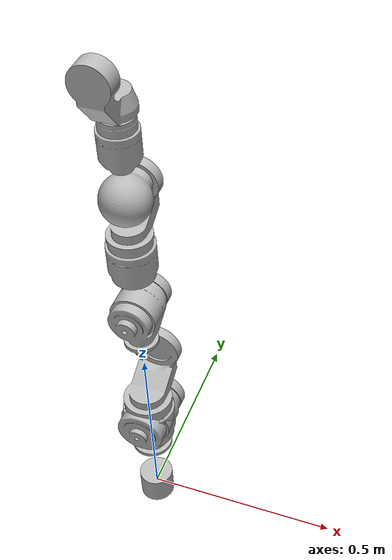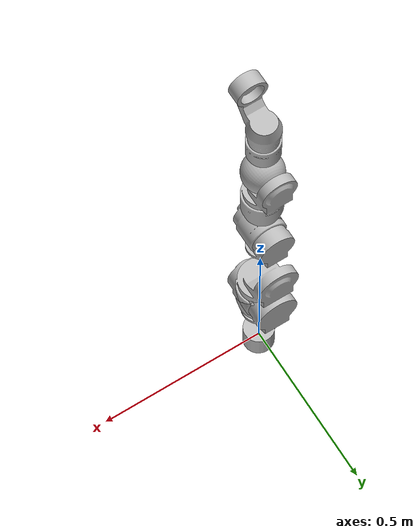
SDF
<sdf version='1.4'>
  <model name='lwa4d'>
    <link name='arm_base_link'>
      <pose>0 0 0 0 -0 0</pose>
      <inertial>
        <pose>0 0 0.09 0 -0 0</pose>
        <mass>3.6</mass>
        <inertia>
          <ixx>0.0105408</ixx>
          <ixy>0</ixy>
          <ixz>0</ixz>
          <iyy>0.0105408</iyy>
          <iyz>0</iyz>
          <izz>0.00648</izz>
        </inertia>
      </inertial>
      <collision name='arm_base_link_collision'>
        <pose>0 0 0.005 0 -0 0</pose>
        <geometry>
          <box>
            <size>0.01 0.01 0.01</size>
          </box>
        </geometry>
      </collision>
      <visual name='arm_base_link_visual'>
        <pose>0 0 0.004 0 -0 0</pose>
        <geometry>
          <cylinder>
            <length>0.08</length>
            <radius>0.045</radius>
          </cylinder>
        </geometry>
      </visual>
      <velocity_decay>
        <linear>0</linear>
        <angular>0</angular>
      </velocity_decay>
    </link>
    <joint name='arm_base_joint' type='revolute'>
      <child>arm_base_link</child>
      <parent>world</parent>
      <axis>
        <limit>
          <lower>0</lower>
          <upper>0</upper>
        </limit>
        <dynamics>
          <damping>0</damping>
        </dynamics>
        <xyz>0 0 1</xyz>
      </axis>
    </joint>
    <link name='arm_1_link'>
      <pose>0 0 0.15 -3.14159 2.06823e-13 -3.14159</pose>
      <inertial>
        <pose>0 0.02 -0.15 0 -0 0</pose>
        <mass>3.6</mass>
        <inertia>
          <ixx>0.0105408</ixx>
          <ixy>0</ixy>
          <ixz>0</ixz>
          <iyy>0.0105408</iyy>
          <iyz>0</iyz>
          <izz>0.00648</izz>
        </inertia>
      </inertial>
      <collision name='arm_1_link_collision'>
        <pose>0 0 -0.15 0 -0 -3.14159</pose>
        <geometry>
          <mesh>
            <scale>1 1 1</scale>
            <uri>model://schunk_description/meshes/lwa4d/arm_1_link.stl</uri>
          </mesh>
        </geometry>
      </collision>
      <visual name='arm_1_link_visual'>
        <pose>0 0 -0.15 0 -0 -3.14159</pose>
        <geometry>
          <mesh>
            <scale>1 1 1</scale>
            <uri>model://schunk_description/meshes/lwa4d/arm_1_link.stl</uri>
          </mesh>
        </geometry>
      </visual>
      <velocity_decay>
        <linear>0</linear>
        <angular>0</angular>
      </velocity_decay>
    </link>
    <joint name='arm_1_joint' type='revolute'>
      <child>arm_1_link</child>
      <parent>arm_base_link</parent>
      <axis>
        <xyz>2.06823e-13 0 -1</xyz>
        <limit>
          <lower>-3.14159</lower>
          <upper>3.14159</upper>
          <effort>216</effort>
          <velocity>0.43633</velocity>
        </limit>
        <dynamics/>
      </axis>
    </joint>
    <link name='arm_2_link'>
      <pose>-3.10235e-14 0 0.3 1.5708 2.06823e-13 -3.14159</pose>
      <inertial>
        <pose>0 0.15 0 0 -0 0</pose>
        <mass>2</mass>
        <inertia>
          <ixx>0.00456066</ixx>
          <ixy>0</ixy>
          <ixz>0</ixz>
          <iyy>0.00456066</iyy>
          <iyz>0</iyz>
          <izz>0.003136</izz>
        </inertia>
      </inertial>
      <collision name='arm_2_link_collision'>
        <pose>0 0 0 0 -0 -3.14159</pose>
        <geometry>
          <mesh>
            <scale>1 1 1</scale>
            <uri>model://schunk_description/meshes/lwa4d/arm_2_link.stl</uri>
          </mesh>
        </geometry>
      </collision>
      <visual name='arm_2_link_visual'>
        <pose>0 0 0 0 -0 -3.14159</pose>
        <geometry>
          <mesh>
            <scale>1 1 1</scale>
            <uri>model://schunk_description/meshes/lwa4d/arm_2_link.stl</uri>
          </mesh>
        </geometry>
      </visual>
      <velocity_decay>
        <linear>0</linear>
        <angular>0</angular>
      </velocity_decay>
    </link>
    <joint name='arm_2_joint' type='revolute'>
      <child>arm_2_link</child>
      <parent>arm_1_link</parent>
      <axis>
        <xyz>1.01273e-24 1 -4.89658e-12</xyz>
        <limit>
          <lower>-3.14159</lower>
          <upper>3.14159</upper>
          <effort>216</effort>
          <velocity>0.43633</velocity>
        </limit>
        <dynamics/>
      </axis>
    </joint>
    <link name='arm_3_link'>
      <pose>-3.10235e-14 0 0.3 -3.14159 2.06823e-13 -3.14159</pose>
      <inertial>
        <pose>0 0.03 -0.39 0 -0 0</pose>
        <mass>2</mass>
        <inertia>
          <ixx>0.00456066</ixx>
          <ixy>0</ixy>
          <ixz>0</ixz>
          <iyy>0.00456066</iyy>
          <iyz>0</iyz>
          <izz>0.003136</izz>
        </inertia>
      </inertial>
      <collision name='arm_3_link_collision'>
        <pose>0 0 -0.39 0 -0 -3.14159</pose>
        <geometry>
          <mesh>
            <scale>1 1 1</scale>
            <uri>model://schunk_description/meshes/lwa4d/arm_3_link.stl</uri>
          </mesh>
        </geometry>
      </collision>
      <visual name='arm_3_link_visual'>
        <pose>0 0 -0.39 0 -0 -3.14159</pose>
        <geometry>
          <mesh>
            <scale>1 1 1</scale>
            <uri>model://schunk_description/meshes/lwa4d/arm_3_link.stl</uri>
          </mesh>
        </geometry>
      </visual>
      <velocity_decay>
        <linear>0</linear>
        <angular>0</angular>
      </velocity_decay>
    </link>
    <joint name='arm_3_joint' type='revolute'>
      <child>arm_3_link</child>
      <parent>arm_2_link</parent>
      <axis>
        <xyz>2.06823e-13 1.30524e-42 -1</xyz>
        <limit>
          <lower>-3.14159</lower>
          <upper>3.14159</upper>
          <effort>81.5</effort>
          <velocity>0.4189</velocity>
        </limit>
        <dynamics/>
      </axis>
    </joint>
    <link name='arm_4_link'>
      <pose>-1.11684e-13 -5.09043e-43 0.69 1.5708 2.06823e-13 3.14159</pose>
      <inertial>
        <pose>0 0.15 0 0 -0 0</pose>
        <mass>1.2</mass>
        <inertia>
          <ixx>0.0018597</ixx>
          <ixy>0</ixy>
          <ixz>0</ixz>
          <iyy>0.0018597</iyy>
          <iyz>0</iyz>
          <izz>0.00118815</izz>
        </inertia>
      </inertial>
      <collision name='arm_4_link_collision'>
        <pose>0 0 0 0 -0 -3.14159</pose>
        <geometry>
          <mesh>
            <scale>1 1 1</scale>
            <uri>model://schunk_description/meshes/lwa4d/arm_4_link.stl</uri>
          </mesh>
        </geometry>
      </collision>
      <visual name='arm_4_link_visual'>
        <pose>0 0 0 0 -0 -3.14159</pose>
        <geometry>
          <mesh>
            <scale>1 1 1</scale>
            <uri>model://schunk_description/meshes/lwa4d/arm_4_link.stl</uri>
          </mesh>
        </geometry>
      </visual>
      <velocity_decay>
        <linear>0</linear>
        <angular>0</angular>
      </velocity_decay>
    </link>
    <joint name='arm_4_joint' type='revolute'>
      <child>arm_4_link</child>
      <parent>arm_3_link</parent>
      <axis>
        <xyz>1.01276e-24 1 -4.89658e-12</xyz>
        <limit>
          <lower>-3.14159</lower>
          <upper>3.14159</upper>
          <effort>81.5</effort>
          <velocity>0.4189</velocity>
        </limit>
        <dynamics/>
      </axis>
    </joint>
    <link name='arm_5_link'>
      <pose>-1.11684e-13 -5.09043e-43 0.69 3.14159 2.06823e-13 3.14159</pose>
      <inertial>
        <pose>0 0.05 -0.24 0 -0 0</pose>
        <mass>0.2</mass>
        <inertia>
          <ixx>0.000116079</ixx>
          <ixy>0</ixy>
          <ixz>0</ixz>
          <iyy>0.000116079</iyy>
          <iyz>0</iyz>
          <izz>0.000198025</izz>
        </inertia>
      </inertial>
      <collision name='arm_5_link_collision'>
        <pose>0 0 -0.323 0 -0 -3.14159</pose>
        <geometry>
          <mesh>
            <scale>1 1 1</scale>
            <uri>model://schunk_description/meshes/lwa4d/arm_5_link.stl</uri>
          </mesh>
        </geometry>
      </collision>
      <visual name='arm_5_link_visual'>
        <pose>0 0 -0.323 0 -0 -3.14159</pose>
        <geometry>
          <mesh>
            <scale>1 1 1</scale>
            <uri>model://schunk_description/meshes/lwa4d/arm_5_link.stl</uri>
          </mesh>
        </geometry>
      </visual>
      <velocity_decay>
        <linear>0</linear>
        <angular>0</angular>
      </velocity_decay>
    </link>
    <joint name='arm_5_joint' type='revolute'>
      <child>arm_5_link</child>
      <parent>arm_4_link</parent>
      <axis>
        <xyz>2.06823e-13 -1.30524e-42 -1</xyz>
        <limit>
          <lower>-3.14159</lower>
          <upper>3.14159</upper>
          <effort>20.7</effort>
          <velocity>0.43633</velocity>
        </limit>
        <dynamics/>
      </axis>
    </joint>
    <link name='arm_6_link'>
      <pose>-1.78488e-13 -8.74509e-44 1.013 1.5708 2.06823e-13 3.14159</pose>
      <inertial>
        <pose>0 0.012 0.017 0 -0 0</pose>
        <mass>1.9</mass>
        <inertia>
          <ixx>0.00275</ixx>
          <ixy>0</ixy>
          <ixz>0</ixz>
          <iyy>0.004002</iyy>
          <iyz>0</iyz>
          <izz>0.00283</izz>
        </inertia>
      </inertial>
      <collision name='arm_6_link_collision'>
        <pose>0 0 0 3.14159 -2.06823e-13 3.14159</pose>
        <geometry>
          <mesh>
            <scale>1 1 1</scale>
            <uri>model://schunk_description/meshes/lwa4d/arm_6_link.stl</uri>
          </mesh>
        </geometry>
      </collision>
      <visual name='arm_6_link_visual'>
        <pose>0 0 0 3.14159 -2.06823e-13 3.14159</pose>
        <geometry>
          <mesh>
            <scale>1 1 1</scale>
            <uri>model://schunk_description/meshes/lwa4d/arm_6_link.stl</uri>
          </mesh>
        </geometry>
      </visual>
      <velocity_decay>
        <linear>0</linear>
        <angular>0</angular>
      </velocity_decay>
    </link>
    <joint name='arm_6_joint' type='revolute'>
      <child>arm_6_link</child>
      <parent>arm_5_link</parent>
      <axis>
        <xyz>1.01276e-24 1 -4.89658e-12</xyz>
        <limit>
          <lower>-2.0944</lower>
          <upper>2.0944</upper>
          <effort>15</effort>
          <velocity>1.2566</velocity>
        </limit>
        <dynamics/>
      </axis>
    </joint>
    <link name='arm_7_link'>
      <pose>-1.78488e-13 -8.74509e-44 1.013 9.79317e-12 2.06823e-13 3.14159</pose>
      <inertial>
        <pose>0 0 0.06 0 -0 0</pose>
        <mass>0.005</mass>
        <inertia>
          <ixx>1.63542e-06</ixx>
          <ixy>0</ixy>
          <ixz>0</ixz>
          <iyy>1.63542e-06</iyy>
          <iyz>0</iyz>
          <izz>2.25e-06</izz>
        </inertia>
      </inertial>
      <collision name='arm_7_link_collision'>
        <pose>0 0 0.06 0 -0 0</pose>
        <geometry>
          <cylinder>
            <length>0.035</length>
            <radius>0.03</radius>
          </cylinder>
        </geometry>
      </collision>
      <visual name='arm_7_link_visual'>
        <pose>0 0 0 0 -0 0</pose>
        <geometry>
          <mesh>
            <scale>1 1 1</scale>
            <uri>model://schunk_description/meshes/lwa4d/arm_7_link.stl</uri>
          </mesh>
        </geometry>
      </visual>
      <velocity_decay>
        <linear>0</linear>
        <angular>0</angular>
      </velocity_decay>
    </link>
    <joint name='arm_7_joint' type='revolute'>
      <child>arm_7_link</child>
      <parent>arm_6_link</parent>
      <axis>
        <xyz>-2.06823e-13 9.79317e-12 1</xyz>
        <limit>
          <lower>-2.0944</lower>
          <upper>2.0944</upper>
          <effort>15</effort>
          <velocity>1.2566</velocity>
        </limit>
        <dynamics/>
      </axis>
    </joint>
    <static>0</static>
    <plugin name='ros_control' filename='libgazebo_ros_control.so'/>
  </model>
</sdf>
